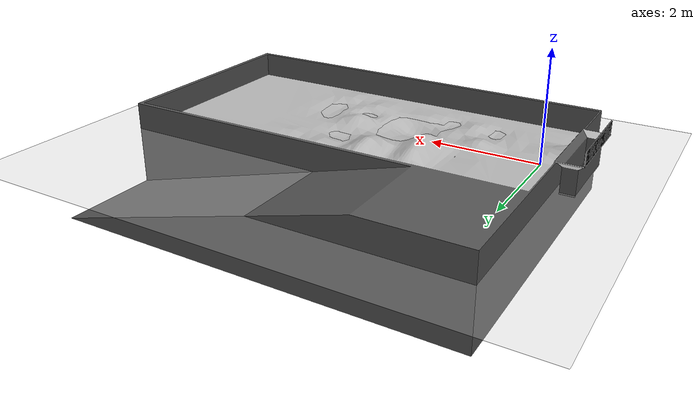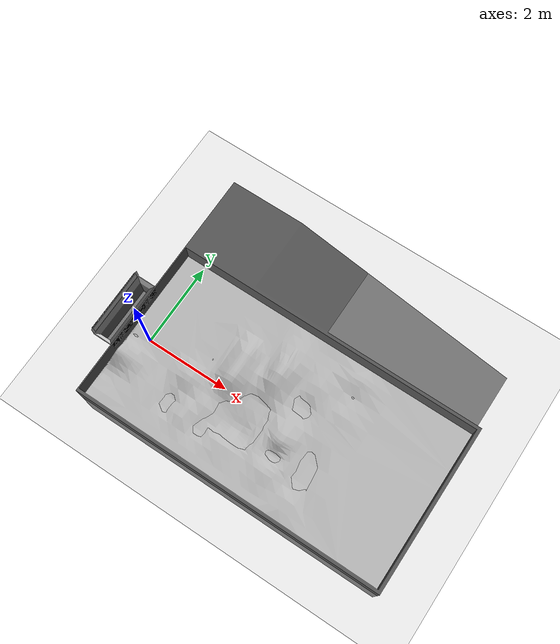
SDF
<?xml version="1.0" ?>
<sdf version="1.4">
  <world name="RMC_World">
    <include>
      <uri>model://ground_plane</uri>
    </include>
    <include>
      <uri>model://sun</uri>
    </include>
    <include>
      <uri>model://LunArena2</uri>
      <name>LunArena2</name>
      <pose>4.6094 1.6869 -1.39564 0 0 1.57</pose>
    </include>
    <include>
      <uri>model://gazebo_config/aruco_19cm</uri>
      <name>aruco_19cm</name>
      <pose>-0.9214 0.165856 0.649386 -1.57 -1.57 -1.57</pose>
    </include>
    <!-- Just to cover the bad aruco marker made with LunArena -->
  </world>
</sdf>

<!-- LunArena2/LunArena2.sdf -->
<sdf version='1.4'>
  <model name='LunArena2'>
    <static>true</static>
    <pose>2 -3 -2 0 0 0</pose>
    <link name='arena_base_link'>
      <collision name='arena_base_link_collision'>
        <pose>0 0 0 0 0 0</pose>
        <geometry>
          <mesh>
            <scale>1 1 1</scale>
            <uri>model://LunArena2/meshes/whole_base.dae</uri>
          </mesh>
        </geometry>
      </collision>
      <visual name='arena_base_link_visual'>
        <pose>0 0 0 0 0 0</pose>
        <geometry>
          <mesh>
            <scale>1 1 1</scale>
            <uri>model://LunArena2/meshes/whole_base.dae</uri>
          </mesh>
        </geometry>
      </visual>
    </link>

  </model>
</sdf>

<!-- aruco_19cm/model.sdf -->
<sdf version="1.4">
  <model name="aruco_19cm">
    <static>true</static>
    <pose>0 0 0.3 0 0 0</pose>
    <link name="link">
      <visual name="visual">
        <geometry>
          <mesh>
            <uri>model://gazebo_config/aruco_19cm/meshes/aruco_marker.dae</uri>
          </mesh>
        </geometry>
      </visual>
      <visual name="visual_white_box">
        <pose>0 0 -0.004 0 0 0</pose>
        <geometry>
           <box>
              <size>0.25 1.6 0.001</size>
           </box>
        </geometry>
      </visual>
    </link>
  </model>
</sdf>
